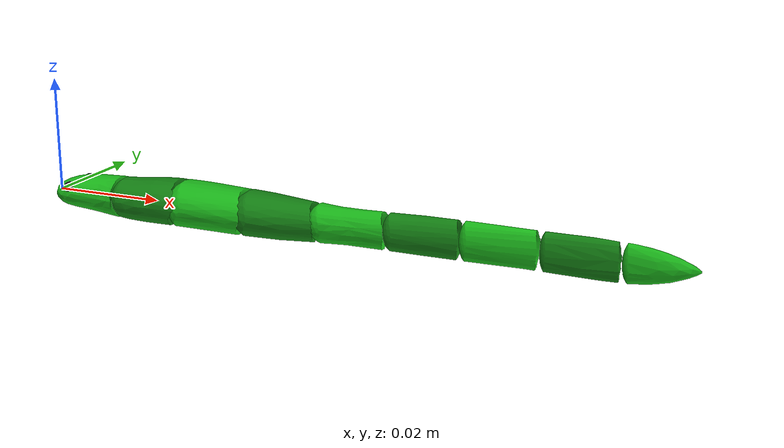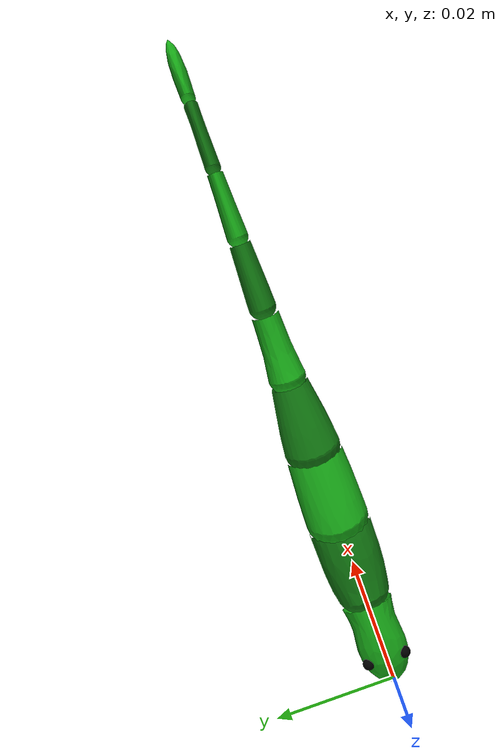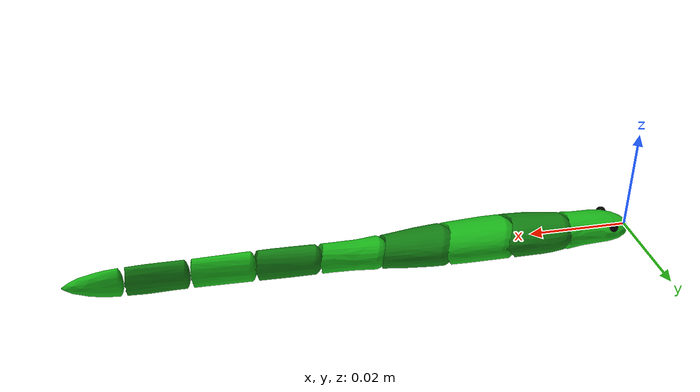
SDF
<?xml version="1.0" ?>
<sdf version="1.6">
  <world name="world">
    <model name="salamander">
      <pose>0.0 0.0 0.0 0.0 0.0 0.0</pose>
      <link name="link_body_0">
        <pose>0.0 0.0 0.0 0.0 0.0 0.0</pose>
        <inertial>
          <pose>0.006614320294700039 -2.6254483624598578e-06 9.425890236297005e-05 0.0 0.0 0.0</pose>
          <mass>0.0003314341253532676</mass>
          <inertia>
            <ixx>1.9894165457231057e-09</ixx>
            <ixy>4.677402828629345e-13</ixy>
            <ixz>-6.257802472396933e-11</ixz>
            <iyy>3.883731949085988e-09</iyy>
            <iyz>4.060529987868285e-13</iyz>
            <izz>4.28780939974546e-09</izz>
          </inertia>
        </inertial>
        <collision name="link_0_collision">
          <pose>0.0 0.0 0.0 0.0 0.0 0.0</pose>
          <geometry>
            <mesh>
              <uri>meshes_salamander/link_0.obj</uri>
              <scale>0.1 0.1 0.1</scale>
            </mesh>
          </geometry>
        </collision>
        <visual name="link_0_visual">
          <pose>0.0 0.0 0.0 0.0 0.0 0.0</pose>
          <geometry>
            <mesh>
              <uri>meshes_salamander/link_0.obj</uri>
              <scale>0.1 0.1 0.1</scale>
            </mesh>
          </geometry>
          <material>
            <ambient>0.1 0.7 0.1 1.0</ambient>
            <diffuse>0.1 0.7 0.1 1.0</diffuse>
            <specular>0.1 0.7 0.1 1.0</specular>
            <emissive>0.1 0.7 0.1 1.0</emissive>
          </material>
        </visual>
        <visual name="eye_left_visual">
          <pose>0.004 -0.003 0.0015 0.0 0.0 0.0</pose>
          <geometry>
            <sphere>
              <radius>0.001</radius>
            </sphere>
          </geometry>
          <material>
            <ambient>0.0 0.0 0.0 1.0</ambient>
            <diffuse>0.0 0.0 0.0 1.0</diffuse>
            <specular>0.0 0.0 0.0 1.0</specular>
            <emissive>0.0 0.0 0.0 1.0</emissive>
          </material>
        </visual>
        <visual name="eye_right_visual">
          <pose>0.004 0.003 0.0015 0.0 0.0 0.0</pose>
          <geometry>
            <sphere>
              <radius>0.001</radius>
            </sphere>
          </geometry>
          <material>
            <ambient>0.0 0.0 0.0 1.0</ambient>
            <diffuse>0.0 0.0 0.0 1.0</diffuse>
            <specular>0.0 0.0 0.0 1.0</specular>
            <emissive>0.0 0.0 0.0 1.0</emissive>
          </material>
        </visual>
      </link>
      <link name="link_body_1">
        <pose>0.016 0.0 0.0 0.0 0.0 0.0</pose>
        <inertial>
          <pose>0.0020807110174861135 -9.981065128739897e-07 0.00017067995134969555 0.0 0.0 0.0</pose>
          <mass>0.000513947355717136</mass>
          <inertia>
            <ixx>4.88055413708698e-09</ixx>
            <ixy>5.907212670572446e-13</ixy>
            <ixz>-3.0853261318131473e-10</ixz>
            <iyy>6.760721064742329e-09</iyy>
            <iyz>4.080429391684195e-13</iyz>
            <izz>7.883527230569223e-09</izz>
          </inertia>
        </inertial>
        <collision name="link_1_collision">
          <pose>0.0 0.0 0.0 0.0 0.0 0.0</pose>
          <geometry>
            <mesh>
              <uri>meshes_salamander/link_1.obj</uri>
              <scale>0.1 0.1 0.1</scale>
            </mesh>
          </geometry>
        </collision>
        <visual name="link_1_visual">
          <pose>0.0 0.0 0.0 0.0 0.0 0.0</pose>
          <geometry>
            <mesh>
              <uri>meshes_salamander/link_1.obj</uri>
              <scale>0.1 0.1 0.1</scale>
            </mesh>
          </geometry>
          <material>
            <ambient>0.06999999999999999 0.48999999999999994 0.06999999999999999 1.0</ambient>
            <diffuse>0.06999999999999999 0.48999999999999994 0.06999999999999999 1.0</diffuse>
            <specular>0.06999999999999999 0.48999999999999994 0.06999999999999999 1.0</specular>
            <emissive>0.06999999999999999 0.48999999999999994 0.06999999999999999 1.0</emissive>
          </material>
        </visual>
      </link>
      <link name="link_body_2">
        <pose>0.028 0.0 0.0 0.0 0.0 0.0</pose>
        <inertial>
          <pose>0.0017610732391481598 8.473337969619475e-07 0.00026236150015524336 0.0 0.0 0.0</pose>
          <mass>0.0006302975694836849</mass>
          <inertia>
            <ixx>6.368006585983783e-09</ixx>
            <ixy>-1.8346303951251634e-12</ixy>
            <ixz>-1.0576304677785683e-10</ixz>
            <iyy>9.61272804223366e-09</iyy>
            <iyz>1.242613134734908e-12</iyz>
            <izz>1.1056774150615385e-08</izz>
          </inertia>
        </inertial>
        <collision name="link_2_collision">
          <pose>0.0 0.0 0.0 0.0 0.0 0.0</pose>
          <geometry>
            <mesh>
              <uri>meshes_salamander/link_2.obj</uri>
              <scale>0.1 0.1 0.1</scale>
            </mesh>
          </geometry>
        </collision>
        <visual name="link_2_visual">
          <pose>0.0 0.0 0.0 0.0 0.0 0.0</pose>
          <geometry>
            <mesh>
              <uri>meshes_salamander/link_2.obj</uri>
              <scale>0.1 0.1 0.1</scale>
            </mesh>
          </geometry>
          <material>
            <ambient>0.1 0.7 0.1 1.0</ambient>
            <diffuse>0.1 0.7 0.1 1.0</diffuse>
            <specular>0.1 0.7 0.1 1.0</specular>
            <emissive>0.1 0.7 0.1 1.0</emissive>
          </material>
        </visual>
      </link>
      <link name="link_body_3">
        <pose>0.04 0.0 0.0 0.0 0.0 0.0</pose>
        <inertial>
          <pose>0.00220242462444822 -2.467003535152703e-07 1.0714791778104194e-05 0.0 0.0 0.0</pose>
          <mass>0.0005277894656067118</mass>
          <inertia>
            <ixx>4.05333426333265e-09</ixx>
            <ixy>1.7783234074048027e-12</ixy>
            <ixz>9.800262465840095e-11</ixz>
            <iyy>8.172186651726383e-09</iyy>
            <iyz>5.926063110452675e-15</iyz>
            <izz>8.67888408860982e-09</izz>
          </inertia>
        </inertial>
        <collision name="link_3_collision">
          <pose>0.0 0.0 0.0 0.0 0.0 0.0</pose>
          <geometry>
            <mesh>
              <uri>meshes_salamander/link_3.obj</uri>
              <scale>0.1 0.1 0.1</scale>
            </mesh>
          </geometry>
        </collision>
        <visual name="link_3_visual">
          <pose>0.0 0.0 0.0 0.0 0.0 0.0</pose>
          <geometry>
            <mesh>
              <uri>meshes_salamander/link_3.obj</uri>
              <scale>0.1 0.1 0.1</scale>
            </mesh>
          </geometry>
          <material>
            <ambient>0.06999999999999999 0.48999999999999994 0.06999999999999999 1.0</ambient>
            <diffuse>0.06999999999999999 0.48999999999999994 0.06999999999999999 1.0</diffuse>
            <specular>0.06999999999999999 0.48999999999999994 0.06999999999999999 1.0</specular>
            <emissive>0.06999999999999999 0.48999999999999994 0.06999999999999999 1.0</emissive>
          </material>
        </visual>
      </link>
      <link name="link_body_4">
        <pose>0.052 0.0 0.0 0.0 0.0 0.0</pose>
        <inertial>
          <pose>0.0030518288768349028 -4.577045427473269e-07 -7.635016497450419e-05 0.0 0.0 0.0</pose>
          <mass>0.00026725672056292894</mass>
          <inertia>
            <ixx>1.1213717427643228e-09</ixx>
            <ixy>2.571124751663882e-12</ixy>
            <ixz>1.1840901860024245e-11</ixz>
            <iyy>3.5540696424230907e-09</iyy>
            <iyz>7.495292261879144e-13</iyz>
            <izz>3.3960382836364808e-09</izz>
          </inertia>
        </inertial>
        <collision name="link_4_collision">
          <pose>0.0 0.0 0.0 0.0 0.0 0.0</pose>
          <geometry>
            <mesh>
              <uri>meshes_salamander/link_4.obj</uri>
              <scale>0.1 0.1 0.1</scale>
            </mesh>
          </geometry>
        </collision>
        <visual name="link_4_visual">
          <pose>0.0 0.0 0.0 0.0 0.0 0.0</pose>
          <geometry>
            <mesh>
              <uri>meshes_salamander/link_4.obj</uri>
              <scale>0.1 0.1 0.1</scale>
            </mesh>
          </geometry>
          <material>
            <ambient>0.1 0.7 0.1 1.0</ambient>
            <diffuse>0.1 0.7 0.1 1.0</diffuse>
            <specular>0.1 0.7 0.1 1.0</specular>
            <emissive>0.1 0.7 0.1 1.0</emissive>
          </material>
        </visual>
      </link>
      <link name="link_body_5">
        <pose>0.064 0.0 0.0 0.0 0.0 0.0</pose>
        <inertial>
          <pose>0.003736910424643143 -1.5930025289268488e-06 1.4864438908745921e-05 0.0 0.0 0.0</pose>
          <mass>0.00020912338853715877</mass>
          <inertia>
            <ixx>7.556464484180234e-10</ixx>
            <ixy>-1.0560540295802301e-13</ixy>
            <ixz>-1.7372901940202117e-11</ixz>
            <iyy>2.6747125410058792e-09</iyy>
            <iyz>3.0397358391829287e-13</iyz>
            <izz>2.373807961960229e-09</izz>
          </inertia>
        </inertial>
        <collision name="link_5_collision">
          <pose>0.0 0.0 0.0 0.0 0.0 0.0</pose>
          <geometry>
            <mesh>
              <uri>meshes_salamander/link_5.obj</uri>
              <scale>0.1 0.1 0.1</scale>
            </mesh>
          </geometry>
        </collision>
        <visual name="link_5_visual">
          <pose>0.0 0.0 0.0 0.0 0.0 0.0</pose>
          <geometry>
            <mesh>
              <uri>meshes_salamander/link_5.obj</uri>
              <scale>0.1 0.1 0.1</scale>
            </mesh>
          </geometry>
          <material>
            <ambient>0.06999999999999999 0.48999999999999994 0.06999999999999999 1.0</ambient>
            <diffuse>0.06999999999999999 0.48999999999999994 0.06999999999999999 1.0</diffuse>
            <specular>0.06999999999999999 0.48999999999999994 0.06999999999999999 1.0</specular>
            <emissive>0.06999999999999999 0.48999999999999994 0.06999999999999999 1.0</emissive>
          </material>
        </visual>
      </link>
      <link name="link_body_6">
        <pose>0.076 0.0 0.0 0.0 0.0 0.0</pose>
        <inertial>
          <pose>0.00393493082399289 -1.2087822294164975e-06 3.771257892379796e-05 0.0 0.0 0.0</pose>
          <mass>0.00015741106318935662</mass>
          <inertia>
            <ixx>4.984862092612395e-10</ixx>
            <ixy>5.01752954531165e-13</ixy>
            <ixz>2.473402777363223e-12</ixz>
            <iyy>2.007742079985634e-09</iyy>
            <iyz>9.31084754493043e-14</iyz>
            <izz>1.7043837037125295e-09</izz>
          </inertia>
        </inertial>
        <collision name="link_6_collision">
          <pose>0.0 0.0 0.0 0.0 0.0 0.0</pose>
          <geometry>
            <mesh>
              <uri>meshes_salamander/link_6.obj</uri>
              <scale>0.1 0.1 0.1</scale>
            </mesh>
          </geometry>
        </collision>
        <visual name="link_6_visual">
          <pose>0.0 0.0 0.0 0.0 0.0 0.0</pose>
          <geometry>
            <mesh>
              <uri>meshes_salamander/link_6.obj</uri>
              <scale>0.1 0.1 0.1</scale>
            </mesh>
          </geometry>
          <material>
            <ambient>0.1 0.7 0.1 1.0</ambient>
            <diffuse>0.1 0.7 0.1 1.0</diffuse>
            <specular>0.1 0.7 0.1 1.0</specular>
            <emissive>0.1 0.7 0.1 1.0</emissive>
          </material>
        </visual>
      </link>
      <link name="link_body_7">
        <pose>0.088 0.0 0.0 0.0 0.0 0.0</pose>
        <inertial>
          <pose>0.004316346129285202 -6.107062606406672e-07 -4.7578422227486045e-05 0.0 0.0 0.0</pose>
          <mass>0.00011888054717026518</mass>
          <inertia>
            <ixx>3.490105115567724e-10</ixx>
            <ixy>6.581294816387696e-13</ixy>
            <ixz>1.5412734441086872e-11</ixz>
            <iyy>1.4783199171180477e-09</iyy>
            <iyz>-1.1610448680471756e-13</iyz>
            <izz>1.2165921921133603e-09</izz>
          </inertia>
        </inertial>
        <collision name="link_7_collision">
          <pose>0.0 0.0 0.0 0.0 0.0 0.0</pose>
          <geometry>
            <mesh>
              <uri>meshes_salamander/link_7.obj</uri>
              <scale>0.1 0.1 0.1</scale>
            </mesh>
          </geometry>
        </collision>
        <visual name="link_7_visual">
          <pose>0.0 0.0 0.0 0.0 0.0 0.0</pose>
          <geometry>
            <mesh>
              <uri>meshes_salamander/link_7.obj</uri>
              <scale>0.1 0.1 0.1</scale>
            </mesh>
          </geometry>
          <material>
            <ambient>0.06999999999999999 0.48999999999999994 0.06999999999999999 1.0</ambient>
            <diffuse>0.06999999999999999 0.48999999999999994 0.06999999999999999 1.0</diffuse>
            <specular>0.06999999999999999 0.48999999999999994 0.06999999999999999 1.0</specular>
            <emissive>0.06999999999999999 0.48999999999999994 0.06999999999999999 1.0</emissive>
          </material>
        </visual>
      </link>
      <link name="link_body_8">
        <pose>0.1 0.0 0.0 0.0 0.0 0.0</pose>
        <inertial>
          <pose>0.003105067128107486 -5.287283415970185e-07 -7.137133223270065e-05 0.0 0.0 0.0</pose>
          <mass>7.547643525532878e-05</mass>
          <inertia>
            <ixx>1.49405616960563e-10</ixx>
            <ixy>-1.6781470155114569e-13</ixy>
            <ixz>-2.230177167758083e-12</ixz>
            <iyy>6.034816361362681e-10</iyy>
            <iyz>1.4281834027805634e-13</iyz>
            <izz>5.073113010852047e-10</izz>
          </inertia>
        </inertial>
        <collision name="link_8_collision">
          <pose>0.0 0.0 0.0 0.0 0.0 0.0</pose>
          <geometry>
            <mesh>
              <uri>meshes_salamander/link_8.obj</uri>
              <scale>0.1 0.1 0.1</scale>
            </mesh>
          </geometry>
        </collision>
        <visual name="link_8_visual">
          <pose>0.0 0.0 0.0 0.0 0.0 0.0</pose>
          <geometry>
            <mesh>
              <uri>meshes_salamander/link_8.obj</uri>
              <scale>0.1 0.1 0.1</scale>
            </mesh>
          </geometry>
          <material>
            <ambient>0.1 0.7 0.1 1.0</ambient>
            <diffuse>0.1 0.7 0.1 1.0</diffuse>
            <specular>0.1 0.7 0.1 1.0</specular>
            <emissive>0.1 0.7 0.1 1.0</emissive>
          </material>
        </visual>
      </link>

      <joint name="joint_body_0" type="revolute">
        <parent>link_body_0</parent>
        <child>link_body_1</child>
        <pose>0.0 0.0 0.0 0.0 0.0 0.0</pose>
        <axis>
          <xyz>0.0 0.0 1.0</xyz>
          <limit>
            <lower>-1.5707963267948966</lower>
            <upper>1.5707963267948966</upper>
            <effort>inf</effort>
            <velocity>inf</velocity>
          </limit>
        </axis>
      </joint>
      <joint name="joint_body_1" type="revolute">
        <parent>link_body_1</parent>
        <child>link_body_2</child>
        <pose>0.0 0.0 0.0 0.0 0.0 0.0</pose>
        <axis>
          <xyz>0.0 0.0 1.0</xyz>
          <limit>
            <lower>-1.5707963267948966</lower>
            <upper>1.5707963267948966</upper>
            <effort>inf</effort>
            <velocity>inf</velocity>
          </limit>
        </axis>
      </joint>
      <joint name="joint_body_2" type="revolute">
        <parent>link_body_2</parent>
        <child>link_body_3</child>
        <pose>0.0 0.0 0.0 0.0 0.0 0.0</pose>
        <axis>
          <xyz>0.0 0.0 1.0</xyz>
          <limit>
            <lower>-1.5707963267948966</lower>
            <upper>1.5707963267948966</upper>
            <effort>inf</effort>
            <velocity>inf</velocity>
          </limit>
        </axis>
      </joint>
      <joint name="joint_body_3" type="revolute">
        <parent>link_body_3</parent>
        <child>link_body_4</child>
        <pose>0.0 0.0 0.0 0.0 0.0 0.0</pose>
        <axis>
          <xyz>0.0 0.0 1.0</xyz>
          <limit>
            <lower>-1.5707963267948966</lower>
            <upper>1.5707963267948966</upper>
            <effort>inf</effort>
            <velocity>inf</velocity>
          </limit>
        </axis>
      </joint>
      <joint name="joint_body_4" type="revolute">
        <parent>link_body_4</parent>
        <child>link_body_5</child>
        <pose>0.0 0.0 0.0 0.0 0.0 0.0</pose>
        <axis>
          <xyz>0.0 0.0 1.0</xyz>
          <limit>
            <lower>-1.5707963267948966</lower>
            <upper>1.5707963267948966</upper>
            <effort>inf</effort>
            <velocity>inf</velocity>
          </limit>
        </axis>
      </joint>
      <joint name="joint_body_5" type="revolute">
        <parent>link_body_5</parent>
        <child>link_body_6</child>
        <pose>0.0 0.0 0.0 0.0 0.0 0.0</pose>
        <axis>
          <xyz>0.0 0.0 1.0</xyz>
          <limit>
            <lower>-1.5707963267948966</lower>
            <upper>1.5707963267948966</upper>
            <effort>inf</effort>
            <velocity>inf</velocity>
          </limit>
        </axis>
      </joint>
      <joint name="joint_body_6" type="revolute">
        <parent>link_body_6</parent>
        <child>link_body_7</child>
        <pose>0.0 0.0 0.0 0.0 0.0 0.0</pose>
        <axis>
          <xyz>0.0 0.0 1.0</xyz>
          <limit>
            <lower>-1.5707963267948966</lower>
            <upper>1.5707963267948966</upper>
            <effort>inf</effort>
            <velocity>inf</velocity>
          </limit>
        </axis>
      </joint>
      <joint name="joint_body_7" type="revolute">
        <parent>link_body_7</parent>
        <child>link_body_8</child>
        <pose>0.0 0.0 0.0 0.0 0.0 0.0</pose>
        <axis>
          <xyz>0.0 0.0 1.0</xyz>
          <limit>
            <lower>-1.5707963267948966</lower>
            <upper>1.5707963267948966</upper>
            <effort>inf</effort>
            <velocity>inf</velocity>
          </limit>
        </axis>
      </joint>

    </model>
  </world>
</sdf>
